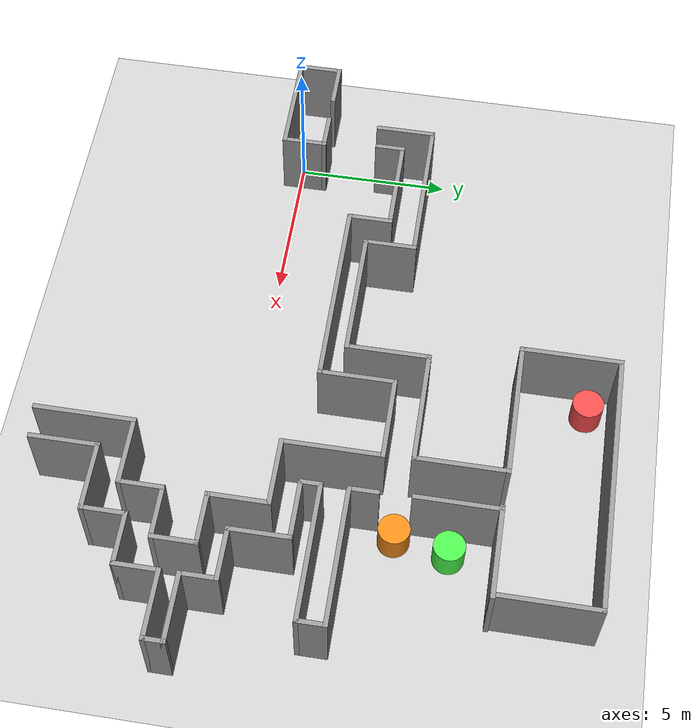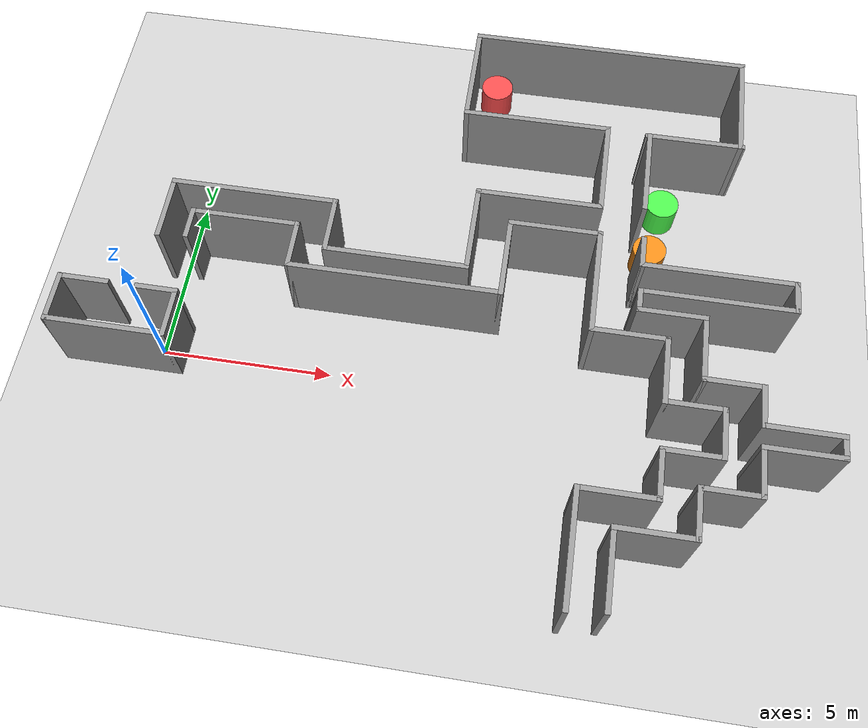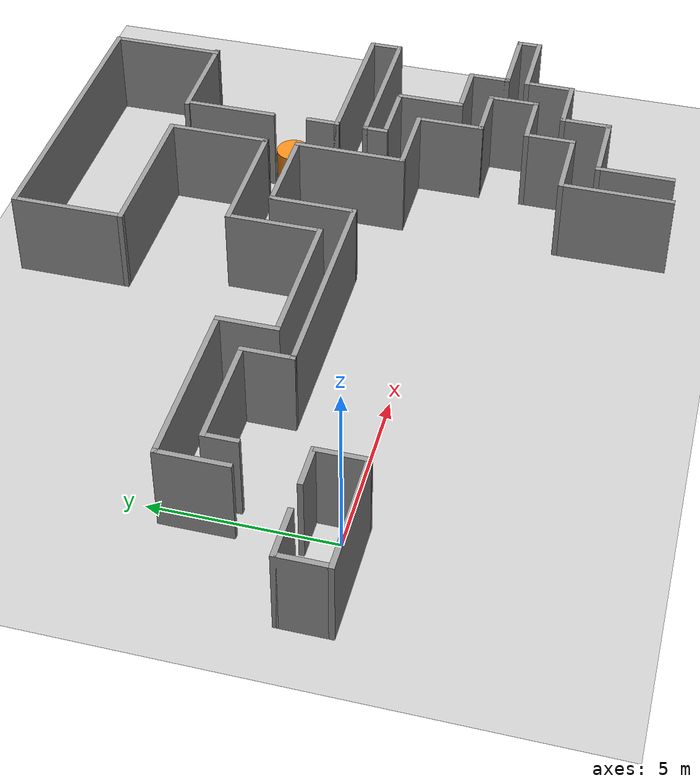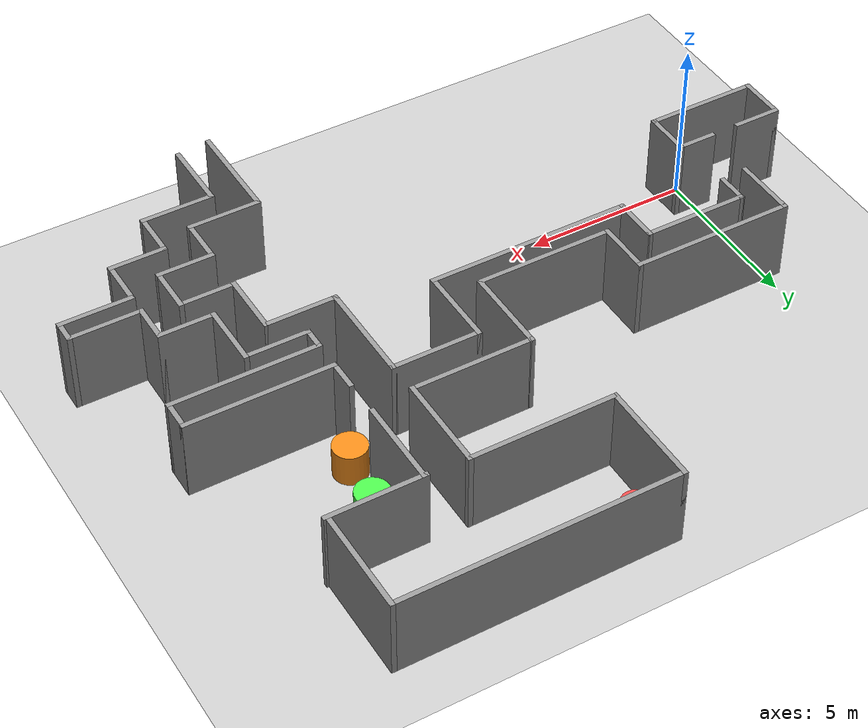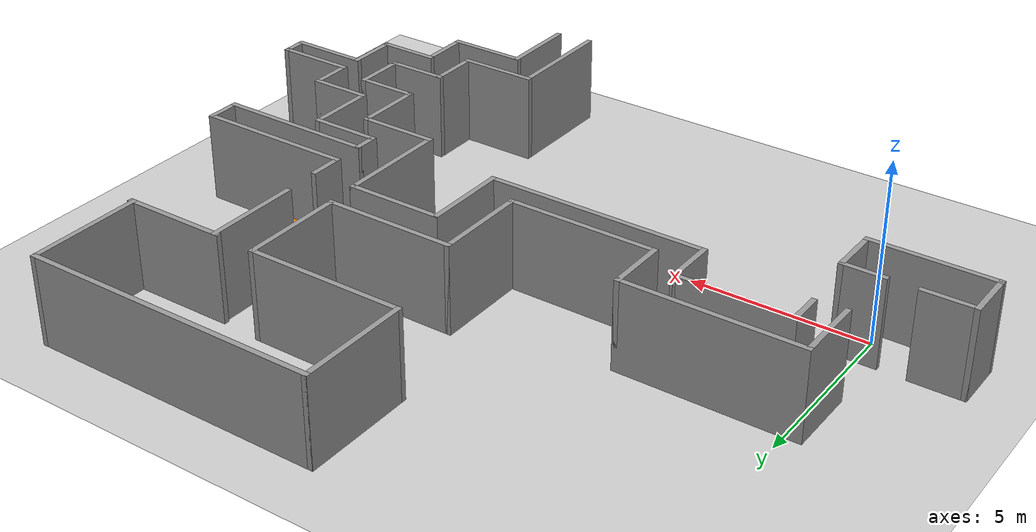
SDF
<sdf version="1.6">
 <world name="default">
  <light name="sun" type="directional">
   <pose>0 0 10 0 -0 0</pose>
   <diffuse>0.8 0.8 0.8 1</diffuse>
   <specular>0.2 0.2 0.2 1</specular>
   <attenuation>
    <range>1000</range>
    <constant>0.9</constant>
    <linear>0.01</linear>
    <quadratic>0.001</quadratic>
   </attenuation>
   <direction>-0.5 0.1 -0.9</direction>
  </light>
  <model name="ground_plane">
   <static>1</static>
   <link name="link">
    <collision name="collision">
     <geometry><plane><normal>0 0 1</normal><size>100 100</size></plane></geometry>
     <surface>
      <contact><collide_bitmask>65535</collide_bitmask></contact>
      <friction><ode><mu>100</mu><mu2>50</mu2></ode></friction>
     </surface>
    </collision>
    <visual name="visual">
     <cast_shadows>0</cast_shadows>
     <geometry><plane><normal>0 0 1</normal><size>100 100</size></plane></geometry>
     <material>
      <script><uri>file://media/materials/scripts/gazebo.material</uri><name>Gazebo/Grey</name></script>
     </material>
    </visual>
   </link>
  </model>
  <gravity>0 0 -9.8</gravity>
  <magnetic_field>6e-06 2.3e-05 -4.2e-05</magnetic_field>
  <atmosphere type="adiabatic"/>
  <physics name="default_physics" default="0" type="ode">
   <max_step_size>0.001</max_step_size>
   <real_time_factor>1</real_time_factor>
   <real_time_update_rate>1000</real_time_update_rate>
  </physics>
  <scene><ambient>0.4 0.4 0.4 1</ambient><background>0.7 0.7 0.7 1</background><shadows>1</shadows></scene>
  <audio><device>default</device></audio>
  <spherical_coordinates>
   <surface_model>EARTH_WGS84</surface_model>
   <latitude_deg>0</latitude_deg>
   <longitude_deg>0</longitude_deg>
   <elevation>0</elevation>
   <heading_deg>0</heading_deg>
  </spherical_coordinates>
  <model name="3P_1">
   <pose>-1.05756 0.16143 0 0 -0 0</pose>
   <link name="Wall_0">
    <collision name="Wall_0_Collision">
     <geometry><box><size>1.5 0.15 2.5</size></box></geometry>
     <pose>0 0 1.25 0 -0 0</pose>
    </collision>
    <visual name="Wall_0_Visual">
     <pose>0 0 1.25 0 -0 0</pose>
     <geometry><box><size>1.5 0.15 2.5</size></box></geometry>
     <material>
      <script><uri>file://media/materials/scripts/gazebo.material</uri><name>Gazebo/Grey</name></script>
      <ambient>1 1 1 1</ambient>
     </material>
     <meta><layer>0</layer></meta>
    </visual>
    <pose>-1.675 0 0 0 -0 1.5708</pose>
   </link>
   <link name="Wall_1">
    <collision name="Wall_1_Collision">
     <geometry><box><size>1.5 0.15 2.5</size></box></geometry>
     <pose>0 0 1.25 0 -0 0</pose>
    </collision>
    <visual name="Wall_1_Visual">
     <pose>0 0 1.25 0 -0 0</pose>
     <geometry><box><size>1.5 0.15 2.5</size></box></geometry>
     <material>
      <script><uri>file://media/materials/scripts/gazebo.material</uri><name>Gazebo/Grey</name></script>
      <ambient>1 1 1 1</ambient>
     </material>
     <meta><layer>0</layer></meta>
    </visual>
    <pose>-1 0.675 0 0 -0 0</pose>
   </link>
   <link name="Wall_3">
    <collision name="Wall_3_Collision">
     <geometry><box><size>3.5 0.15 2.5</size></box></geometry>
     <pose>0 0 1.25 0 -0 0</pose>
    </collision>
    <visual name="Wall_3_Visual">
     <pose>0 0 1.25 0 -0 0</pose>
     <geometry><box><size>3.5 0.15 2.5</size></box></geometry>
     <material>
      <script><uri>file://media/materials/scripts/gazebo.material</uri><name>Gazebo/Grey</name></script>
      <ambient>1 1 1 1</ambient>
     </material>
     <meta><layer>0</layer></meta>
    </visual>
    <pose>-0 -0.675 0 0 -0 0</pose>
   </link>
   <link name="Wall_4">
    <collision name="Wall_4_Collision">
     <geometry><box><size>1.5 0.15 2.5</size></box></geometry>
     <pose>0 0 1.25 0 -0 0</pose>
    </collision>
    <visual name="Wall_4_Visual">
     <pose>0 0 1.25 0 -0 0</pose>
     <geometry><box><size>1.5 0.15 2.5</size></box></geometry>
     <material>
      <script><uri>file://media/materials/scripts/gazebo.material</uri><name>Gazebo/Grey</name></script>
      <ambient>1 1 1 1</ambient>
     </material>
     <meta><layer>0</layer></meta>
    </visual>
    <pose>1.675 0 0 0 -0 1.5708</pose>
   </link>
   <link name="Wall_5">
    <collision name="Wall_5_Collision">
     <geometry><box><size>1.25 0.15 2.5</size></box></geometry>
     <pose>0 0 1.25 0 -0 0</pose>
    </collision>
    <visual name="Wall_5_Visual">
     <pose>0 0 1.25 0 -0 0</pose>
     <geometry><box><size>1.25 0.15 2.5</size></box></geometry>
     <material>
      <script><uri>file://media/materials/scripts/gazebo.material</uri><name>Gazebo/Grey</name></script>
      <ambient>1 1 1 1</ambient>
     </material>
     <meta><layer>0</layer></meta>
    </visual>
    <pose>1.125 0.675 0 0 -0 3.14159</pose>
   </link>
   <static>1</static>
  </model>
  <model name="3P_2">
   <pose>9.32432 2.58543 0 0 -0 0</pose>
   <link name="Wall_10">
    <collision name="Wall_10_Collision">
     <geometry><box><size>2 0.15 2.5</size></box></geometry>
     <pose>0 0 1.25 0 -0 0</pose>
    </collision>
    <visual name="Wall_10_Visual">
     <pose>0 0 1.25 0 -0 0</pose>
     <geometry><box><size>2 0.15 2.5</size></box></geometry>
     <material>
      <script><uri>file://media/materials/scripts/gazebo.material</uri><name>Gazebo/Grey</name></script>
      <ambient>1 1 1 1</ambient>
     </material>
     <meta><layer>0</layer></meta>
    </visual>
    <pose>-9.70905 0.940156 0 0 -0 1.5708</pose>
   </link>
   <link name="Wall_104">
    <collision name="Wall_104_Collision">
     <geometry><box><size>2.75 0.15 2.5</size></box></geometry>
     <pose>0 0 1.25 0 -0 0</pose>
    </collision>
    <visual name="Wall_104_Visual">
     <pose>0 0 1.25 0 -0 0</pose>
     <geometry><box><size>2.75 0.15 2.5</size></box></geometry>
     <material>
      <script><uri>file://media/materials/scripts/gazebo.material</uri><name>Gazebo/Grey</name></script>
      <ambient>1 1 1 1</ambient>
     </material>
     <meta><layer>0</layer></meta>
    </visual>
    <pose>4.11859 4.3487 0 0 -0 -1.5708</pose>
   </link>
   <link name="Wall_11">
    <collision name="Wall_11_Collision">
     <geometry><box><size>5 0.15 2.5</size></box></geometry>
     <pose>0 0 1.25 0 -0 0</pose>
    </collision>
    <visual name="Wall_11_Visual">
     <pose>0 0 1.25 0 -0 0</pose>
     <geometry><box><size>5 0.15 2.5</size></box></geometry>
     <material>
      <script><uri>file://media/materials/scripts/gazebo.material</uri><name>Gazebo/Grey</name></script>
      <ambient>1 1 1 1</ambient>
     </material>
     <meta><layer>0</layer></meta>
    </visual>
    <pose>-7.28405 1.86516 0 0 -0 0</pose>
   </link>
   <link name="Wall_12">
    <collision name="Wall_12_Collision">
     <geometry><box><size>1.75 0.15 2.5</size></box></geometry>
     <pose>0 0 1.25 0 -0 0</pose>
    </collision>
    <visual name="Wall_12_Visual">
     <pose>0 0 1.25 0 -0 0</pose>
     <geometry><box><size>1.75 0.15 2.5</size></box></geometry>
     <material>
      <script><uri>file://media/materials/scripts/gazebo.material</uri><name>Gazebo/Grey</name></script>
      <ambient>1 1 1 1</ambient>
     </material>
     <meta><layer>0</layer></meta>
    </visual>
    <pose>-4.85905 1.06516 0 0 -0 -1.5708</pose>
   </link>
   <link name="Wall_13">
    <collision name="Wall_13_Collision">
     <geometry><box><size>4.25 0.15 2.5</size></box></geometry>
     <pose>0 0 1.25 0 -0 0</pose>
    </collision>
    <visual name="Wall_13_Visual">
     <pose>0 0 1.25 0 -0 0</pose>
     <geometry><box><size>4.25 0.15 2.5</size></box></geometry>
     <material>
      <script><uri>file://media/materials/scripts/gazebo.material</uri><name>Gazebo/Grey</name></script>
      <ambient>1 1 1 1</ambient>
     </material>
     <meta><layer>0</layer></meta>
    </visual>
    <pose>-2.80905 0.265156 0 0 -0 0</pose>
   </link>
   <link name="Wall_14">
    <collision name="Wall_14_Collision">
     <geometry><box><size>2.75 0.15 2.5</size></box></geometry>
     <pose>0 0 1.25 0 -0 0</pose>
    </collision>
    <visual name="Wall_14_Visual">
     <pose>0 0 1.25 0 -0 0</pose>
     <geometry><box><size>2.75 0.15 2.5</size></box></geometry>
     <material>
      <script><uri>file://media/materials/scripts/gazebo.material</uri><name>Gazebo/Grey</name></script>
      <ambient>1 1 1 1</ambient>
     </material>
     <meta><layer>0</layer></meta>
    </visual>
    <pose>-0.759052 1.56516 0 0 -0 1.5708</pose>
   </link>
   <link name="Wall_15">
    <collision name="Wall_15_Collision">
     <geometry><box><size>3.75 0.15 2.5</size></box></geometry>
     <pose>0 0 1.25 0 -0 0</pose>
    </collision>
    <visual name="Wall_15_Visual">
     <pose>0 0 1.25 0 -0 0</pose>
     <geometry><box><size>3.75 0.15 2.5</size></box></geometry>
     <material>
      <script><uri>file://media/materials/scripts/gazebo.material</uri><name>Gazebo/Grey</name></script>
      <ambient>1 1 1 1</ambient>
     </material>
     <meta><layer>0</layer></meta>
    </visual>
    <pose>1.04095 2.86516 0 0 -0 0</pose>
   </link>
   <link name="Wall_17">
    <collision name="Wall_17_Collision">
     <geometry><box><size>1 0.15 2.5</size></box></geometry>
     <pose>0 0 1.25 0 -0 0</pose>
    </collision>
    <visual name="Wall_17_Visual">
     <pose>0 0 1.25 0 -0 0</pose>
     <geometry><box><size>1 0.15 2.5</size></box></geometry>
     <material>
      <script><uri>file://media/materials/scripts/gazebo.material</uri><name>Gazebo/Grey</name></script>
      <ambient>1 1 1 1</ambient>
     </material>
     <meta><layer>0</layer></meta>
    </visual>
    <pose>-8.89948 0.509548 0 0 -0 1.5708</pose>
   </link>
   <link name="Wall_18">
    <collision name="Wall_18_Collision">
     <geometry><box><size>3.25 0.15 2.5</size></box></geometry>
     <pose>0 0 1.25 0 -0 0</pose>
    </collision>
    <visual name="Wall_18_Visual">
     <pose>0 0 1.25 0 -0 0</pose>
     <geometry><box><size>3.25 0.15 2.5</size></box></geometry>
     <material>
      <script><uri>file://media/materials/scripts/gazebo.material</uri><name>Gazebo/Grey</name></script>
      <ambient>1 1 1 1</ambient>
     </material>
     <meta><layer>0</layer></meta>
    </visual>
    <pose>-7.34948 0.934548 0 0 -0 0</pose>
   </link>
   <link name="Wall_19">
    <collision name="Wall_19_Collision">
     <geometry><box><size>1.5 0.15 2.5</size></box></geometry>
     <pose>0 0 1.25 0 -0 0</pose>
    </collision>
    <visual name="Wall_19_Visual">
     <pose>0 0 1.25 0 -0 0</pose>
     <geometry><box><size>1.5 0.15 2.5</size></box></geometry>
     <material>
      <script><uri>file://media/materials/scripts/gazebo.material</uri><name>Gazebo/Grey</name></script>
      <ambient>1 1 1 1</ambient>
     </material>
     <meta><layer>0</layer></meta>
    </visual>
    <pose>-5.79948 0.259548 0 0 -0 -1.5708</pose>
   </link>
   <link name="Wall_20">
    <collision name="Wall_20_Collision">
     <geometry><box><size>6.25 0.15 2.5</size></box></geometry>
     <pose>0 0 1.25 0 -0 0</pose>
    </collision>
    <visual name="Wall_20_Visual">
     <pose>0 0 1.25 0 -0 0</pose>
     <geometry><box><size>6.25 0.15 2.5</size></box></geometry>
     <material>
      <script><uri>file://media/materials/scripts/gazebo.material</uri><name>Gazebo/Grey</name></script>
      <ambient>1 1 1 1</ambient>
     </material>
     <meta><layer>0</layer></meta>
    </visual>
    <pose>-2.74948 -0.415452 0 0 -0 0</pose>
   </link>
   <link name="Wall_21">
    <collision name="Wall_21_Collision">
     <geometry><box><size>2.5 0.15 2.5</size></box></geometry>
     <pose>0 0 1.25 0 -0 0</pose>
    </collision>
    <visual name="Wall_21_Visual">
     <pose>0 0 1.25 0 -0 0</pose>
     <geometry><box><size>2.5 0.15 2.5</size></box></geometry>
     <material>
      <script><uri>file://media/materials/scripts/gazebo.material</uri><name>Gazebo/Grey</name></script>
      <ambient>1 1 1 1</ambient>
     </material>
     <meta><layer>0</layer></meta>
    </visual>
    <pose>0.30052 0.759548 0 0 -0 1.5708</pose>
   </link>
   <link name="Wall_22">
    <collision name="Wall_22_Collision">
     <geometry><box><size>2.75 0.15 2.5</size></box></geometry>
     <pose>0 0 1.25 0 -0 0</pose>
    </collision>
    <visual name="Wall_22_Visual">
     <pose>0 0 1.25 0 -0 0</pose>
     <geometry><box><size>2.75 0.15 2.5</size></box></geometry>
     <material>
      <script><uri>file://media/materials/scripts/gazebo.material</uri><name>Gazebo/Grey</name></script>
      <ambient>1 1 1 1</ambient>
     </material>
     <meta><layer>0</layer></meta>
    </visual>
    <pose>1.60052 1.93455 0 0 -0 0</pose>
   </link>
   <link name="Wall_24">
    <collision name="Wall_24_Collision">
     <geometry><box><size>3.25 0.15 2.5</size></box></geometry>
     <pose>0 0 1.25 0 -0 0</pose>
    </collision>
    <visual name="Wall_24_Visual">
     <pose>0 0 1.25 0 -0 0</pose>
     <geometry><box><size>3.25 0.15 2.5</size></box></geometry>
     <material>
      <script><uri>file://media/materials/scripts/gazebo.material</uri><name>Gazebo/Grey</name></script>
      <ambient>1 1 1 1</ambient>
     </material>
     <meta><layer>0</layer></meta>
    </visual>
    <pose>2.90052 0.384548 0 0 -0 -1.5708</pose>
   </link>
   <link name="Wall_25">
    <collision name="Wall_25_Collision">
     <geometry><box><size>2.25 0.15 2.5</size></box></geometry>
     <pose>0 0 1.25 0 -0 0</pose>
    </collision>
    <visual name="Wall_25_Visual">
     <pose>0 0 1.25 0 -0 0</pose>
     <geometry><box><size>2.25 0.15 2.5</size></box></geometry>
     <material>
      <script><uri>file://media/materials/scripts/gazebo.material</uri><name>Gazebo/Grey</name></script>
      <ambient>1 1 1 1</ambient>
     </material>
     <meta><layer>0</layer></meta>
    </visual>
    <pose>3.95052 -1.16545 0 0 -0 0</pose>
   </link>
   <link name="Wall_26">
    <collision name="Wall_26_Collision">
     <geometry><box><size>2 0.15 2.5</size></box></geometry>
     <pose>0 0 1.25 0 -0 0</pose>
    </collision>
    <visual name="Wall_26_Visual">
     <pose>0 0 1.25 0 -0 0</pose>
     <geometry><box><size>2 0.15 2.5</size></box></geometry>
     <material>
      <script><uri>file://media/materials/scripts/gazebo.material</uri><name>Gazebo/Grey</name></script>
      <ambient>1 1 1 1</ambient>
     </material>
     <meta><layer>0</layer></meta>
    </visual>
    <pose>5.00052 -2.09045 0 0 -0 -1.5708</pose>
   </link>
   <link name="Wall_27">
    <collision name="Wall_27_Collision">
     <geometry><box><size>1.75 0.15 2.5</size></box></geometry>
     <pose>0 0 1.25 0 -0 0</pose>
    </collision>
    <visual name="Wall_27_Visual">
     <pose>0 0 1.25 0 -0 0</pose>
     <geometry><box><size>1.75 0.15 2.5</size></box></geometry>
     <material>
      <script><uri>file://media/materials/scripts/gazebo.material</uri><name>Gazebo/Grey</name></script>
      <ambient>1 1 1 1</ambient>
     </material>
     <meta><layer>0</layer></meta>
    </visual>
    <pose>5.80052 -3.01545 0 0 -0 0</pose>
   </link>
   <link name="Wall_28">
    <collision name="Wall_28_Collision">
     <geometry><box><size>1.5 0.15 2.5</size></box></geometry>
     <pose>0 0 1.25 0 -0 0</pose>
    </collision>
    <visual name="Wall_28_Visual">
     <pose>0 0 1.25 0 -0 0</pose>
     <geometry><box><size>1.5 0.15 2.5</size></box></geometry>
     <material>
      <script><uri>file://media/materials/scripts/gazebo.material</uri><name>Gazebo/Grey</name></script>
      <ambient>1 1 1 1</ambient>
     </material>
     <meta><layer>0</layer></meta>
    </visual>
    <pose>6.60052 -3.69045 0 0 -0 -1.5708</pose>
   </link>
   <link name="Wall_29">
    <collision name="Wall_29_Collision">
     <geometry><box><size>1.75 0.15 2.5</size></box></geometry>
     <pose>0 0 1.25 0 -0 0</pose>
    </collision>
    <visual name="Wall_29_Visual">
     <pose>0 0 1.25 0 -0 0</pose>
     <geometry><box><size>1.75 0.15 2.5</size></box></geometry>
     <material>
      <script><uri>file://media/materials/scripts/gazebo.material</uri><name>Gazebo/Grey</name></script>
      <ambient>1 1 1 1</ambient>
     </material>
     <meta><layer>0</layer></meta>
    </visual>
    <pose>5.80052 -4.36545 0 0 -0 3.14159</pose>
   </link>
   <link name="Wall_30">
    <collision name="Wall_30_Collision">
     <geometry><box><size>1.5 0.15 2.5</size></box></geometry>
     <pose>0 0 1.25 0 -0 0</pose>
    </collision>
    <visual name="Wall_30_Visual">
     <pose>0 0 1.25 0 -0 0</pose>
     <geometry><box><size>1.5 0.15 2.5</size></box></geometry>
     <material>
      <script><uri>file://media/materials/scripts/gazebo.material</uri><name>Gazebo/Grey</name></script>
      <ambient>1 1 1 1</ambient>
     </material>
     <meta><layer>0</layer></meta>
    </visual>
    <pose>5.00052 -5.04045 0 0 -0 -1.5708</pose>
   </link>
   <link name="Wall_31">
    <collision name="Wall_31_Collision">
     <geometry><box><size>2.25 0.15 2.5</size></box></geometry>
     <pose>0 0 1.25 0 -0 0</pose>
    </collision>
    <visual name="Wall_31_Visual">
     <pose>0 0 1.25 0 -0 0</pose>
     <geometry><box><size>2.25 0.15 2.5</size></box></geometry>
     <material>
      <script><uri>file://media/materials/scripts/gazebo.material</uri><name>Gazebo/Grey</name></script>
      <ambient>1 1 1 1</ambient>
     </material>
     <meta><layer>0</layer></meta>
    </visual>
    <pose>3.95052 -5.71545 0 0 -0 3.14159</pose>
   </link>
   <link name="Wall_32">
    <collision name="Wall_32_Collision">
     <geometry><box><size>3.25 0.15 2.5</size></box></geometry>
     <pose>0 0 1.25 0 -0 0</pose>
    </collision>
    <visual name="Wall_32_Visual">
     <pose>0 0 1.25 0 -0 0</pose>
     <geometry><box><size>3.25 0.15 2.5</size></box></geometry>
     <material>
      <script><uri>file://media/materials/scripts/gazebo.material</uri><name>Gazebo/Grey</name></script>
      <ambient>1 1 1 1</ambient>
     </material>
     <meta><layer>0</layer></meta>
    </visual>
    <pose>2.90052 -7.26545 0 0 -0 -1.5708</pose>
   </link>
   <link name="Wall_35">
    <collision name="Wall_35_Collision">
     <geometry><box><size>1 0.15 2.5</size></box></geometry>
     <pose>0 0 1.25 0 -0 0</pose>
    </collision>
    <visual name="Wall_35_Visual">
     <pose>0 0 1.25 0 -0 0</pose>
     <geometry><box><size>1 0.15 2.5</size></box></geometry>
     <material>
      <script><uri>file://media/materials/scripts/gazebo.material</uri><name>Gazebo/Grey</name></script>
      <ambient>1 1 1 1</ambient>
     </material>
     <meta><layer>0</layer></meta>
    </visual>
    <pose>4.15905 1.51612 0 0 -0 -1.5708</pose>
   </link>
   <link name="Wall_36">
    <collision name="Wall_36_Collision">
     <geometry><box><size>4.5 0.15 2.5</size></box></geometry>
     <pose>0 0 1.25 0 -0 0</pose>
    </collision>
    <visual name="Wall_36_Visual">
     <pose>0 0 1.25 0 -0 0</pose>
     <geometry><box><size>4.5 0.15 2.5</size></box></geometry>
     <material>
      <script><uri>file://media/materials/scripts/gazebo.material</uri><name>Gazebo/Grey</name></script>
      <ambient>1 1 1 1</ambient>
     </material>
     <meta><layer>0</layer></meta>
    </visual>
    <pose>6.33405 1.09112 0 0 -0 0</pose>
   </link>
   <link name="Wall_37">
    <collision name="Wall_37_Collision">
     <geometry><box><size>1 0.15 2.5</size></box></geometry>
     <pose>0 0 1.25 0 -0 0</pose>
    </collision>
    <visual name="Wall_37_Visual">
     <pose>0 0 1.25 0 -0 0</pose>
     <geometry><box><size>1 0.15 2.5</size></box></geometry>
     <material>
      <script><uri>file://media/materials/scripts/gazebo.material</uri><name>Gazebo/Grey</name></script>
      <ambient>1 1 1 1</ambient>
     </material>
     <meta><layer>0</layer></meta>
    </visual>
    <pose>8.50905 0.666116 0 0 -0 -1.5708</pose>
   </link>
   <link name="Wall_38">
    <collision name="Wall_38_Collision">
     <geometry><box><size>4.5 0.15 2.5</size></box></geometry>
     <pose>0 0 1.25 0 -0 0</pose>
    </collision>
    <visual name="Wall_38_Visual">
     <pose>0 0 1.25 0 -0 0</pose>
     <geometry><box><size>4.5 0.15 2.5</size></box></geometry>
     <material>
      <script><uri>file://media/materials/scripts/gazebo.material</uri><name>Gazebo/Grey</name></script>
      <ambient>1 1 1 1</ambient>
     </material>
     <meta><layer>0</layer></meta>
    </visual>
    <pose>6.33405 0.241115 0 0 -0 3.14159</pose>
   </link>
   <link name="Wall_39">
    <collision name="Wall_39_Collision">
     <geometry><box><size>0.75 0.15 2.5</size></box></geometry>
     <pose>0 0 1.25 0 -0 0</pose>
    </collision>
    <visual name="Wall_39_Visual">
     <pose>0 0 1.25 0 -0 0</pose>
     <geometry><box><size>0.75 0.15 2.5</size></box></geometry>
     <material>
      <script><uri>file://media/materials/scripts/gazebo.material</uri><name>Gazebo/Grey</name></script>
      <ambient>1 1 1 1</ambient>
     </material>
     <meta><layer>0</layer></meta>
    </visual>
    <pose>4.15905 -0.058884 0 0 -0 -1.5708</pose>
   </link>
   <link name="Wall_40">
    <collision name="Wall_40_Collision">
     <geometry><box><size>2 0.15 2.5</size></box></geometry>
     <pose>0 0 1.25 0 -0 0</pose>
    </collision>
    <visual name="Wall_40_Visual">
     <pose>0 0 1.25 0 -0 0</pose>
     <geometry><box><size>2 0.15 2.5</size></box></geometry>
     <material>
      <script><uri>file://media/materials/scripts/gazebo.material</uri><name>Gazebo/Grey</name></script>
      <ambient>1 1 1 1</ambient>
     </material>
     <meta><layer>0</layer></meta>
    </visual>
    <pose>5.08405 -0.358884 0 0 -0 0</pose>
   </link>
   <link name="Wall_41">
    <collision name="Wall_41_Collision">
     <geometry><box><size>2 0.15 2.5</size></box></geometry>
     <pose>0 0 1.25 0 -0 0</pose>
    </collision>
    <visual name="Wall_41_Visual">
     <pose>0 0 1.25 0 -0 0</pose>
     <geometry><box><size>2 0.15 2.5</size></box></geometry>
     <material>
      <script><uri>file://media/materials/scripts/gazebo.material</uri><name>Gazebo/Grey</name></script>
      <ambient>1 1 1 1</ambient>
     </material>
     <meta><layer>0</layer></meta>
    </visual>
    <pose>6.00905 -1.28388 0 0 -0 -1.5708</pose>
   </link>
   <link name="Wall_42">
    <collision name="Wall_42_Collision">
     <geometry><box><size>1.75 0.15 2.5</size></box></geometry>
     <pose>0 0 1.25 0 -0 0</pose>
    </collision>
    <visual name="Wall_42_Visual">
     <pose>0 0 1.25 0 -0 0</pose>
     <geometry><box><size>1.75 0.15 2.5</size></box></geometry>
     <material>
      <script><uri>file://media/materials/scripts/gazebo.material</uri><name>Gazebo/Grey</name></script>
      <ambient>1 1 1 1</ambient>
     </material>
     <meta><layer>0</layer></meta>
    </visual>
    <pose>6.80905 -2.20888 0 0 -0 0</pose>
   </link>
   <link name="Wall_43">
    <collision name="Wall_43_Collision">
     <geometry><box><size>1.25 0.15 2.5</size></box></geometry>
     <pose>0 0 1.25 0 -0 0</pose>
    </collision>
    <visual name="Wall_43_Visual">
     <pose>0 0 1.25 0 -0 0</pose>
     <geometry><box><size>1.25 0.15 2.5</size></box></geometry>
     <material>
      <script><uri>file://media/materials/scripts/gazebo.material</uri><name>Gazebo/Grey</name></script>
      <ambient>1 1 1 1</ambient>
     </material>
     <meta><layer>0</layer></meta>
    </visual>
    <pose>7.60905 -2.75888 0 0 -0 -1.5708</pose>
   </link>
   <link name="Wall_44">
    <collision name="Wall_44_Collision">
     <geometry><box><size>2.25 0.15 2.5</size></box></geometry>
     <pose>0 0 1.25 0 -0 0</pose>
    </collision>
    <visual name="Wall_44_Visual">
     <pose>0 0 1.25 0 -0 0</pose>
     <geometry><box><size>2.25 0.15 2.5</size></box></geometry>
     <material>
      <script><uri>file://media/materials/scripts/gazebo.material</uri><name>Gazebo/Grey</name></script>
      <ambient>1 1 1 1</ambient>
     </material>
     <meta><layer>0</layer></meta>
    </visual>
    <pose>8.65905 -3.30889 0 0 -0 0</pose>
   </link>
   <link name="Wall_45">
    <collision name="Wall_45_Collision">
     <geometry><box><size>0.75 0.15 2.5</size></box></geometry>
     <pose>0 0 1.25 0 -0 0</pose>
    </collision>
    <visual name="Wall_45_Visual">
     <pose>0 0 1.25 0 -0 0</pose>
     <geometry><box><size>0.75 0.15 2.5</size></box></geometry>
     <material>
      <script><uri>file://media/materials/scripts/gazebo.material</uri><name>Gazebo/Grey</name></script>
      <ambient>1 1 1 1</ambient>
     </material>
     <meta><layer>0</layer></meta>
    </visual>
    <pose>9.70905 -3.60888 0 0 -0 -1.5708</pose>
   </link>
   <link name="Wall_46">
    <collision name="Wall_46_Collision">
     <geometry><box><size>2.25 0.15 2.5</size></box></geometry>
     <pose>0 0 1.25 0 -0 0</pose>
    </collision>
    <visual name="Wall_46_Visual">
     <pose>0 0 1.25 0 -0 0</pose>
     <geometry><box><size>2.25 0.15 2.5</size></box></geometry>
     <material>
      <script><uri>file://media/materials/scripts/gazebo.material</uri><name>Gazebo/Grey</name></script>
      <ambient>1 1 1 1</ambient>
     </material>
     <meta><layer>0</layer></meta>
    </visual>
    <pose>8.65905 -3.90888 0 0 -0 3.14159</pose>
   </link>
   <link name="Wall_47">
    <collision name="Wall_47_Collision">
     <geometry><box><size>1.5 0.15 2.5</size></box></geometry>
     <pose>0 0 1.25 0 -0 0</pose>
    </collision>
    <visual name="Wall_47_Visual">
     <pose>0 0 1.25 0 -0 0</pose>
     <geometry><box><size>1.5 0.15 2.5</size></box></geometry>
     <material>
      <script><uri>file://media/materials/scripts/gazebo.material</uri><name>Gazebo/Grey</name></script>
      <ambient>1 1 1 1</ambient>
     </material>
     <meta><layer>0</layer></meta>
    </visual>
    <pose>7.60905 -4.58388 0 0 -0 -1.5708</pose>
   </link>
   <link name="Wall_48">
    <collision name="Wall_48_Collision">
     <geometry><box><size>1.75 0.15 2.5</size></box></geometry>
     <pose>0 0 1.25 0 -0 0</pose>
    </collision>
    <visual name="Wall_48_Visual">
     <pose>0 0 1.25 0 -0 0</pose>
     <geometry><box><size>1.75 0.15 2.5</size></box></geometry>
     <material>
      <script><uri>file://media/materials/scripts/gazebo.material</uri><name>Gazebo/Grey</name></script>
      <ambient>1 1 1 1</ambient>
     </material>
     <meta><layer>0</layer></meta>
    </visual>
    <pose>6.80905 -5.25888 0 0 -0 3.14159</pose>
   </link>
   <link name="Wall_49">
    <collision name="Wall_49_Collision">
     <geometry><box><size>1.5 0.15 2.5</size></box></geometry>
     <pose>0 0 1.25 0 -0 0</pose>
    </collision>
    <visual name="Wall_49_Visual">
     <pose>0 0 1.25 0 -0 0</pose>
     <geometry><box><size>1.5 0.15 2.5</size></box></geometry>
     <material>
      <script><uri>file://media/materials/scripts/gazebo.material</uri><name>Gazebo/Grey</name></script>
      <ambient>1 1 1 1</ambient>
     </material>
     <meta><layer>0</layer></meta>
    </visual>
    <pose>6.00905 -5.93388 0 0 -0 -1.5708</pose>
   </link>
   <link name="Wall_50">
    <collision name="Wall_50_Collision">
     <geometry><box><size>2.25 0.15 2.5</size></box></geometry>
     <pose>0 0 1.25 0 -0 0</pose>
    </collision>
    <visual name="Wall_50_Visual">
     <pose>0 0 1.25 0 -0 0</pose>
     <geometry><box><size>2.25 0.15 2.5</size></box></geometry>
     <material>
      <script><uri>file://media/materials/scripts/gazebo.material</uri><name>Gazebo/Grey</name></script>
      <ambient>1 1 1 1</ambient>
     </material>
     <meta><layer>0</layer></meta>
    </visual>
    <pose>4.95905 -6.60888 0 0 -0 3.14159</pose>
   </link>
   <link name="Wall_51">
    <collision name="Wall_51_Collision">
     <geometry><box><size>2.25 0.15 2.5</size></box></geometry>
     <pose>0 0 1.25 0 -0 0</pose>
    </collision>
    <visual name="Wall_51_Visual">
     <pose>0 0 1.25 0 -0 0</pose>
     <geometry><box><size>2.25 0.15 2.5</size></box></geometry>
     <material>
      <script><uri>file://media/materials/scripts/gazebo.material</uri><name>Gazebo/Grey</name></script>
      <ambient>1 1 1 1</ambient>
     </material>
     <meta><layer>0</layer></meta>
    </visual>
    <pose>3.90905 -7.65888 0 0 -0 -1.5708</pose>
   </link>
   <link name="Wall_53">
    <collision name="Wall_53_Collision">
     <geometry><box><size>3 0.15 2.5</size></box></geometry>
     <pose>0 0 1.25 0 -0 0</pose>
    </collision>
    <visual name="Wall_53_Visual">
     <pose>0 0 1.25 0 -0 0</pose>
     <geometry><box><size>3 0.15 2.5</size></box></geometry>
     <material>
      <script><uri>file://media/materials/scripts/gazebo.material</uri><name>Gazebo/Grey</name></script>
      <ambient>1 1 1 1</ambient>
     </material>
     <meta><layer>0</layer></meta>
    </visual>
    <pose>2.84095 4.29016 0 0 -0 1.5708</pose>
   </link>
   <link name="Wall_54">
    <collision name="Wall_54_Collision">
     <geometry><box><size>4.5 0.15 2.5</size></box></geometry>
     <pose>0 0 1.25 0 -0 0</pose>
    </collision>
    <visual name="Wall_54_Visual">
     <pose>0 0 1.25 0 -0 0</pose>
     <geometry><box><size>4.5 0.15 2.5</size></box></geometry>
     <material>
      <script><uri>file://media/materials/scripts/gazebo.material</uri><name>Gazebo/Grey</name></script>
      <ambient>1 1 1 1</ambient>
     </material>
     <meta><layer>0</layer></meta>
    </visual>
    <pose>0.665949 5.71516 0 0 -0 3.14159</pose>
   </link>
   <link name="Wall_55">
    <collision name="Wall_55_Collision">
     <geometry><box><size>3.25 0.15 2.5</size></box></geometry>
     <pose>0 0 1.25 0 -0 0</pose>
    </collision>
    <visual name="Wall_55_Visual">
     <pose>0 0 1.25 0 -0 0</pose>
     <geometry><box><size>3.25 0.15 2.5</size></box></geometry>
     <material>
      <script><uri>file://media/materials/scripts/gazebo.material</uri><name>Gazebo/Grey</name></script>
      <ambient>1 1 1 1</ambient>
     </material>
     <meta><layer>0</layer></meta>
    </visual>
    <pose>-1.50905 7.26516 0 0 -0 1.5708</pose>
   </link>
   <link name="Wall_56">
    <collision name="Wall_56_Collision">
     <geometry><box><size>8.5 0.15 2.5</size></box></geometry>
     <pose>0 0 1.25 0 -0 0</pose>
    </collision>
    <visual name="Wall_56_Visual">
     <pose>0 0 1.25 0 -0 0</pose>
     <geometry><box><size>8.5 0.15 2.5</size></box></geometry>
     <material>
      <script><uri>file://media/materials/scripts/gazebo.material</uri><name>Gazebo/Grey</name></script>
      <ambient>1 1 1 1</ambient>
     </material>
     <meta><layer>0</layer></meta>
    </visual>
    <pose>2.66595 8.81516 0 0 -0 0</pose>
   </link>
   <link name="Wall_57">
    <collision name="Wall_57_Collision">
     <geometry><box><size>3.31705 0.15 2.5</size></box></geometry>
     <pose>0 0 1.25 0 -0 0</pose>
    </collision>
    <visual name="Wall_57_Visual">
     <pose>0 0 1.25 0 -0 0</pose>
     <geometry><box><size>3.31705 0.15 2.5</size></box></geometry>
     <material>
      <script><uri>file://media/materials/scripts/gazebo.material</uri><name>Gazebo/Grey</name></script>
      <ambient>1 1 1 1</ambient>
     </material>
     <meta><layer>0</layer></meta>
    </visual>
    <pose>6.84095 7.23193 0 0 -0 -1.5708</pose>
   </link>
   <link name="Wall_58">
    <collision name="Wall_58_Collision">
     <geometry><box><size>2.99472 0.15 2.5</size></box></geometry>
     <pose>0 0 1.25 0 -0 0</pose>
    </collision>
    <visual name="Wall_58_Visual">
     <pose>0 0 1.25 0 -0 0</pose>
     <geometry><box><size>2.99472 0.15 2.5</size></box></geometry>
     <material>
      <script><uri>file://media/materials/scripts/gazebo.material</uri><name>Gazebo/Grey</name></script>
      <ambient>1 1 1 1</ambient>
     </material>
     <meta><layer>0</layer></meta>
    </visual>
    <pose>5.47977 5.6487 0 0 -0 3.14159</pose>
   </link>
   <static>1</static>
  </model>
  <model name="cylinder1">
   <link name="link_0">
    <inertial>
     <mass>1</mass>
     <inertia><ixx>0.145833</ixx><ixy>0</ixy><ixz>0</ixz><iyy>0.145833</iyy><iyz>0</iyz><izz>0.125</izz></inertia>
    </inertial>
    <visual name="visual">
     <geometry><cylinder><radius>0.5</radius><length>1</length></cylinder></geometry>
     <material>
      <lighting>1</lighting>
      <script><uri>file://media/materials/scripts/gazebo.material</uri><name>Gazebo/Orange</name></script>
      <ambient>0.3 0.3 1 1</ambient>
      <diffuse>0.7 0.7 0.7 1</diffuse>
      <specular>0.01 0.01 0.01 1</specular>
      <emissive>0 0 0 1</emissive>
      <shader type="vertex"><normal_map>__default__</normal_map></shader>
     </material>
    </visual>
    <collision name="collision">
     <geometry><cylinder><radius>0.5</radius><length>1</length></cylinder></geometry>
     <surface>
      <friction>
       <ode><mu>1</mu><mu2>1</mu2><fdir1>0 0 0</fdir1><slip1>0</slip1><slip2>0</slip2></ode>
       <torsional>
        <coefficient>1</coefficient>
        <patch_radius>0</patch_radius>
        <surface_radius>0</surface_radius>
        <use_patch_radius>1</use_patch_radius>
        <ode><slip>0</slip></ode>
       </torsional>
      </friction>
      <bounce><restitution_coefficient>0</restitution_coefficient><threshold>1e+06</threshold></bounce>
      <contact>
       <collide_without_contact>0</collide_without_contact>
       <collide_without_contact_bitmask>1</collide_without_contact_bitmask>
       <collide_bitmask>1</collide_bitmask>
       <ode>
        <soft_cfm>0</soft_cfm>
        <soft_erp>0.2</soft_erp>
        <kp>1e+13</kp>
        <kd>1</kd>
        <max_vel>0.01</max_vel>
        <min_depth>0</min_depth>
       </ode>
       <bullet>
        <split_impulse>1</split_impulse>
        <split_impulse_penetration_threshold>-0.01</split_impulse_penetration_threshold>
        <soft_cfm>0</soft_cfm>
        <soft_erp>0.2</soft_erp>
        <kp>1e+13</kp>
        <kd>1</kd>
       </bullet>
      </contact>
     </surface>
    </collision>
   </link>
   <static>0</static>
   <pose>13.8723 5.13516 0.499991 0 -0 0</pose>
  </model>
  <model name="cylinder3">
   <link name="link_0">
    <inertial>
     <mass>1</mass>
     <inertia><ixx>0.145833</ixx><ixy>0</ixy><ixz>0</ixz><iyy>0.145833</iyy><iyz>0</iyz><izz>0.125</izz></inertia>
    </inertial>
    <visual name="visual">
     <geometry><cylinder><radius>0.5</radius><length>1</length></cylinder></geometry>
     <material>
      <lighting>1</lighting>
      <script><uri>file://media/materials/scripts/gazebo.material</uri><name>Gazebo/Grey</name></script>
      <ambient>0.3 1 0.3 1</ambient>
      <diffuse>0.7 0.7 0.7 1</diffuse>
      <specular>0.01 0.01 0.01 1</specular>
      <emissive>0 0 0 1</emissive>
     </material>
    </visual>
    <collision name="collision">
     <geometry><cylinder><radius>0.5</radius><length>1</length></cylinder></geometry>
     <surface>
      <friction>
       <ode><mu>1</mu><mu2>1</mu2><fdir1>0 0 0</fdir1><slip1>0</slip1><slip2>0</slip2></ode>
       <torsional>
        <coefficient>1</coefficient>
        <patch_radius>0</patch_radius>
        <surface_radius>0</surface_radius>
        <use_patch_radius>1</use_patch_radius>
        <ode><slip>0</slip></ode>
       </torsional>
      </friction>
      <bounce><restitution_coefficient>0</restitution_coefficient><threshold>1e+06</threshold></bounce>
      <contact>
       <collide_without_contact>0</collide_without_contact>
       <collide_without_contact_bitmask>1</collide_without_contact_bitmask>
       <collide_bitmask>1</collide_bitmask>
       <ode>
        <soft_cfm>0</soft_cfm>
        <soft_erp>0.2</soft_erp>
        <kp>1e+13</kp>
        <kd>1</kd>
        <max_vel>0.01</max_vel>
        <min_depth>0</min_depth>
       </ode>
       <bullet>
        <split_impulse>1</split_impulse>
        <split_impulse_penetration_threshold>-0.01</split_impulse_penetration_threshold>
        <soft_cfm>0</soft_cfm>
        <soft_erp>0.2</soft_erp>
        <kp>1e+13</kp>
        <kd>1</kd>
       </bullet>
      </contact>
     </surface>
    </collision>
   </link>
   <static>0</static>
   <pose>14.1629 6.85442 0.5 0 -0 0</pose>
  </model>
  <model name="cylinder2">
   <link name="link_0">
    <inertial>
     <mass>1</mass>
     <inertia><ixx>0.145833</ixx><ixy>0</ixy><ixz>0</ixz><iyy>0.145833</iyy><iyz>0</iyz><izz>0.125</izz></inertia>
    </inertial>
    <visual name="visual">
     <geometry><cylinder><radius>0.5</radius><length>1</length></cylinder></geometry>
     <material>
      <lighting>1</lighting>
      <script><uri>file://media/materials/scripts/gazebo.material</uri><name>Gazebo/Grey</name></script>
      <ambient>1 0.3 0.3 1</ambient>
      <diffuse>0.7 0.7 0.7 1</diffuse>
      <specular>0.01 0.01 0.01 1</specular>
      <emissive>0 0 0 1</emissive>
     </material>
    </visual>
    <collision name="collision">
     <geometry><cylinder><radius>0.5</radius><length>1</length></cylinder></geometry>
     <surface>
      <friction>
       <ode><mu>1</mu><mu2>1</mu2><fdir1>0 0 0</fdir1><slip1>0</slip1><slip2>0</slip2></ode>
       <torsional>
        <coefficient>1</coefficient>
        <patch_radius>0</patch_radius>
        <surface_radius>0</surface_radius>
        <use_patch_radius>1</use_patch_radius>
        <ode><slip>0</slip></ode>
       </torsional>
      </friction>
      <bounce><restitution_coefficient>0</restitution_coefficient><threshold>1e+06</threshold></bounce>
      <contact>
       <collide_without_contact>0</collide_without_contact>
       <collide_without_contact_bitmask>1</collide_without_contact_bitmask>
       <collide_bitmask>1</collide_bitmask>
       <ode>
        <soft_cfm>0</soft_cfm>
        <soft_erp>0.2</soft_erp>
        <kp>1e+13</kp>
        <kd>1</kd>
        <max_vel>0.01</max_vel>
        <min_depth>0</min_depth>
       </ode>
       <bullet>
        <split_impulse>1</split_impulse>
        <split_impulse_penetration_threshold>-0.01</split_impulse_penetration_threshold>
        <soft_cfm>0</soft_cfm>
        <soft_erp>0.2</soft_erp>
        <kp>1e+13</kp>
        <kd>1</kd>
       </bullet>
      </contact>
     </surface>
    </collision>
   </link>
   <static>0</static>
   <pose>8.56568 10.6241 0.499991 0 -0 0</pose>
  </model>
 </world>
</sdf>
